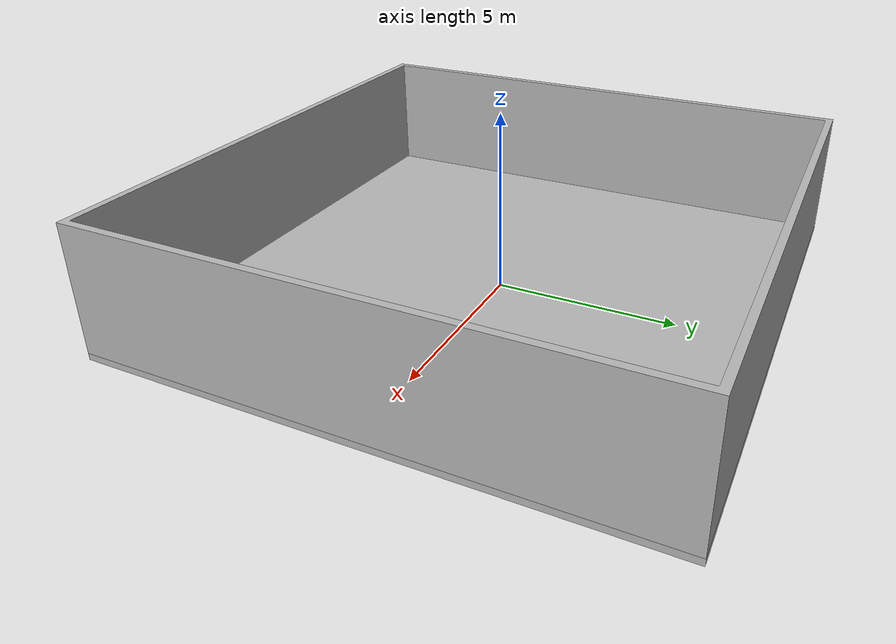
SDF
<?xml version="1.0"?>
<sdf version="1.5">
    <model name="house_walls">
        <static>true</static>
        <link name="link">
            <collision name="collision_wall">
                <pose>0 0 0.05 0 0 0</pose>
                <geometry>
                    <mesh>
                        <uri>model://house_scene_2_walls_out/meshes/scene_2_walls_out.dae</uri>
                    </mesh>
                </geometry>
            </collision>
            <visual name="visual_walls">
              <pose>0 0 0.05 0 0 0</pose>
              <geometry>
              <mesh>
                 <uri>model://house_scene_2_walls_out/meshes/scene_2_walls_out.dae</uri>
              </mesh>
              </geometry>
             </visual>

             <collision name="collision_flor">
                <pose>0 0 0.05 0 0 0</pose>
                <geometry>
                    <mesh>
                        <uri>model://house_scene_2_walls_out/meshes/floor_c.dae</uri>
                    </mesh>
                </geometry>
            </collision>
            <visual name="visual_flor">
              <pose>0 0 0.05 0 0 0</pose>
              <geometry>
              <mesh>
                 <uri>model://house_scene_2_walls_out/meshes/floor_c.dae</uri>
              </mesh>
              </geometry>
             </visual>
        </link>
    </model>
</sdf>
